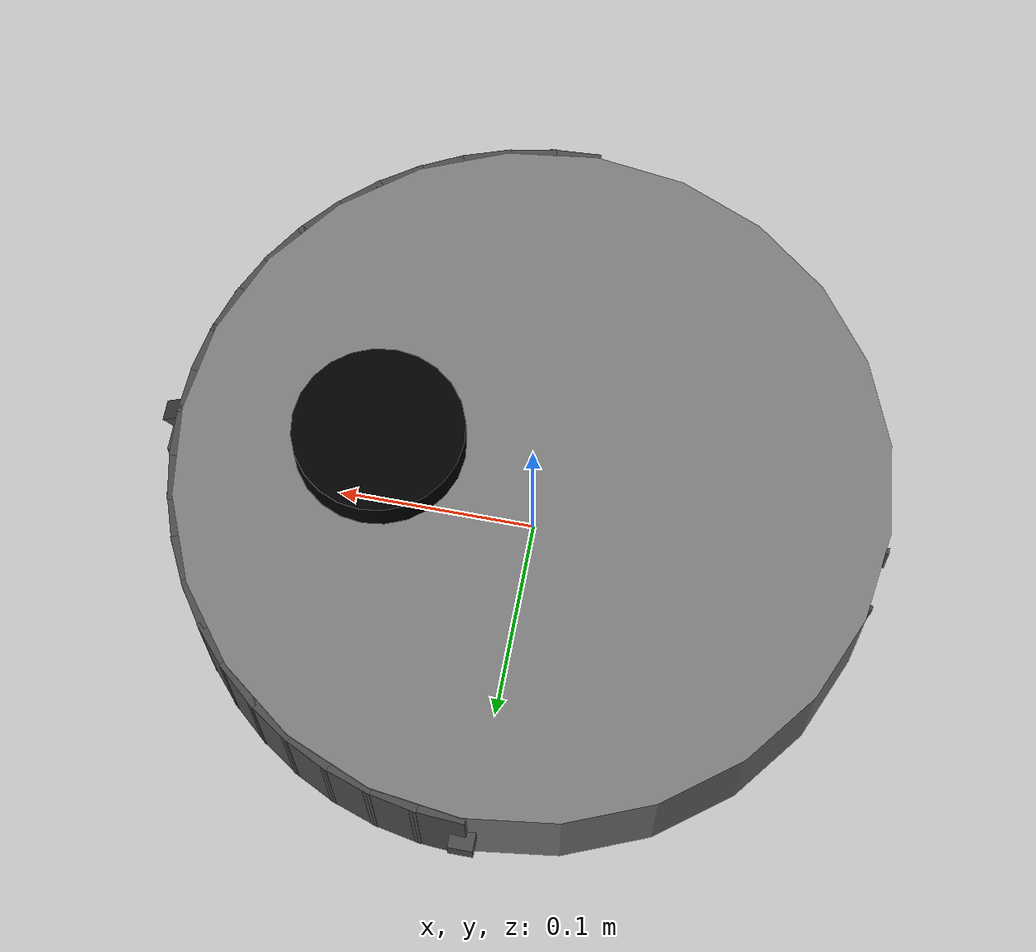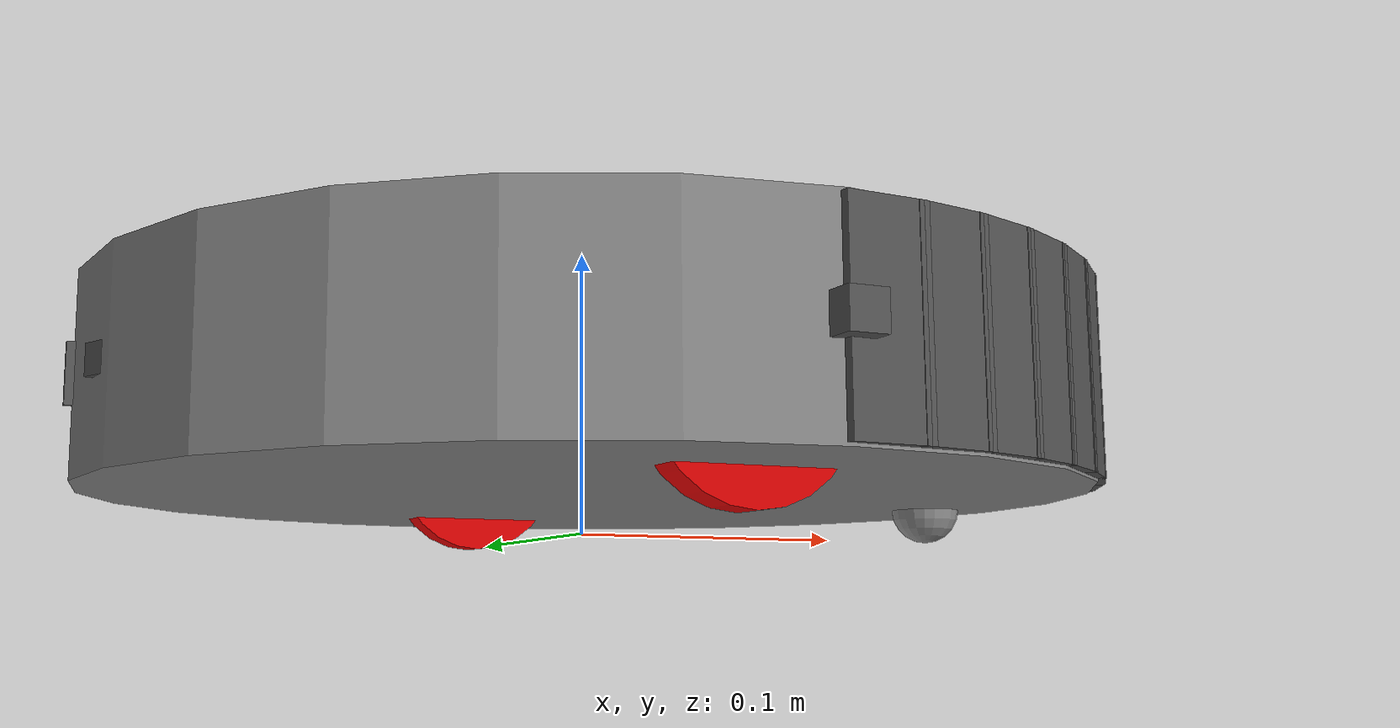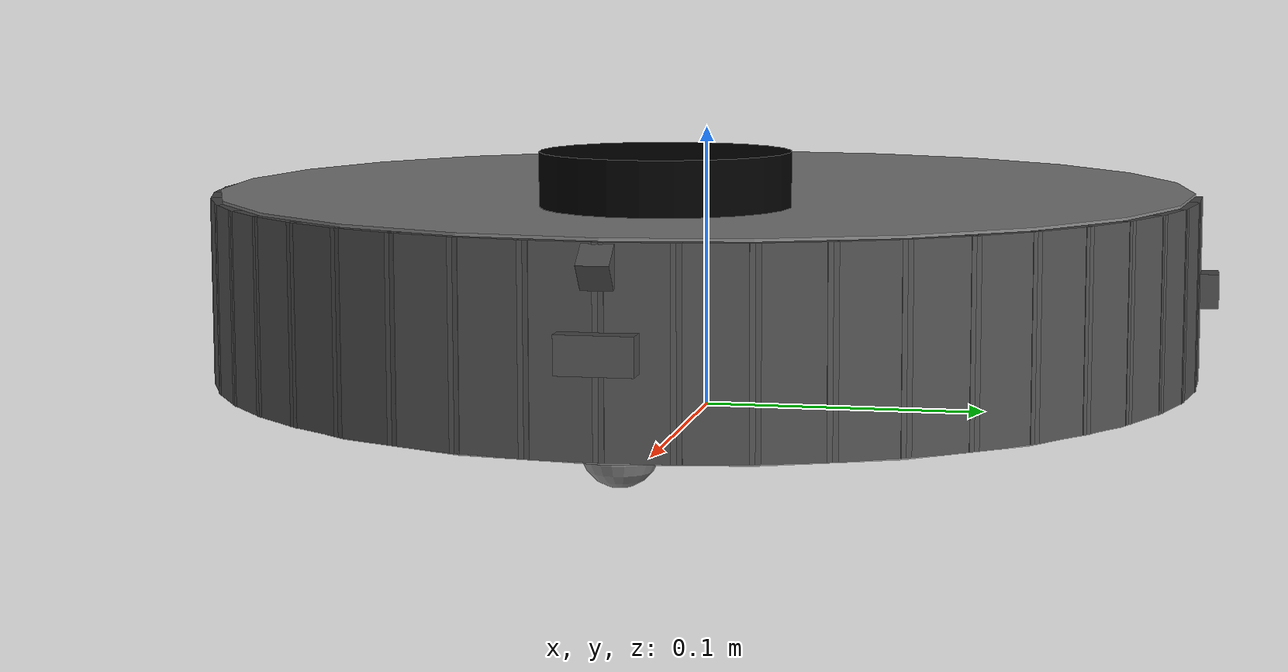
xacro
<?xml version="1.0" ?>
<robot name="oomwoo_one" xmlns:xacro="http://ros.org/wiki/xacro">
  <xacro:include filename="params.xacro" />
  <xacro:include filename="inertial.xacro" />
  <xacro:include filename="plugins.xacro" />
  <xacro:include filename="materials.xacro" />

  <xacro:property name="bumper_facet_width"
                  value="${2 * (base_diameter/2) * sin(0.5 * (90.0/bumper_facets_per_side) * DEG2RAD) * 1.15}"/>
  <xacro:property name="bumper_face_radius"
                  value="${sqrt((base_diameter/2)**2 - (bumper_facet_width/2)**2)}"/>
  <xacro:property name="bumper_center_radius" value="${bumper_face_radius - bumper_thickness/2}"/>
  <xacro:property name="body_collision_radius" value="${bumper_face_radius - bumper_lead}"/>
  <xacro:property name="bumper_visual_inset" value="0.001"/>

  <!-- One bumper facet: a thin box tangent to the body at angle 'ang' (deg from
       front), flush with the body radius. Named collision so the contact sensor
       can list it. -->
  <xacro:macro name="bumper_facet" params="prefix idx ang width">
    <visual>
      <origin xyz="${bumper_center_radius*cos(ang*DEG2RAD)} ${bumper_center_radius*sin(ang*DEG2RAD)} ${bumper_z}"
              rpy="0 0 ${(ang+90)*DEG2RAD}"/>
      <geometry>
        <box size="${width} ${bumper_thickness} ${bumper_height - 2*bumper_visual_inset}"/>
      </geometry>
      <material name="dark"/>
    </visual>
    <collision name="${prefix}_${idx}">
      <origin xyz="${bumper_center_radius*cos(ang*DEG2RAD)} ${bumper_center_radius*sin(ang*DEG2RAD)} ${bumper_z}"
              rpy="0 0 ${(ang+90)*DEG2RAD}"/>
      <geometry>
        <box size="${width} ${bumper_thickness} ${bumper_height}"/>
      </geometry>
    </collision>
  </xacro:macro>

  <!-- A 90-deg bumper half built from 'n' facets spanning a0 .. a0+90 deg.
       Facet width = arc chord * 1.15 so neighbours overlap (continuous, no gaps). -->
  <xacro:macro name="bumper_arc" params="prefix a0 n i:=0">
    <xacro:if value="${i &lt; n}">
      <xacro:bumper_facet prefix="${prefix}" idx="${i}"
        ang="${a0 + (i + 0.5) * (90.0 / n)}"
        width="${bumper_facet_width}"/>
      <xacro:bumper_arc prefix="${prefix}" a0="${a0}" n="${n}" i="${i + 1}"/>
    </xacro:if>
  </xacro:macro>

  <xacro:macro name="side_range_sensor" params="prefix side_sign">
    <joint name="${prefix}_joint" type="fixed">
      <parent link="base_link"/>
      <child link="${prefix}_link"/>
      <origin xyz="${range_sensor_x} ${side_sign * base_diameter/2} ${range_sensor_z}"
              rpy="0 0 ${side_sign * range_sensor_angle_deg * DEG2RAD}"/>
    </joint>
    <link name="${prefix}_link">
      <visual>
        <origin xyz="0 0 0" rpy="0 0 0"/>
        <geometry>
          <box size="${range_sensor_size} ${range_sensor_size} ${range_sensor_size}"/>
        </geometry>
        <material name="dark"/>
      </visual>
      <xacro:solid_box_inertia m="${range_sensor_mass}"
        x="${range_sensor_size}" y="${range_sensor_size}" z="${range_sensor_size}"/>
    </link>
  </xacro:macro>

  <xacro:macro name="ir_receiver" params="prefix side_sign">
    <joint name="${prefix}_joint" type="fixed">
      <parent link="base_link"/>
      <child link="${prefix}_link"/>
      <origin xyz="${-base_diameter/2 + ir_rx_size} ${side_sign * ir_rx_y} ${ir_rx_z}"
              rpy="0 0 ${(180.0 - side_sign * ir_rx_splay_deg) * DEG2RAD}"/>
    </joint>
    <link name="${prefix}_link">
      <visual>
        <origin xyz="0 0 0" rpy="0 0 0"/>
        <geometry>
          <box size="${ir_rx_size} ${ir_rx_size} ${ir_rx_size}"/>
        </geometry>
        <material name="dark"/>
      </visual>
      <xacro:solid_box_inertia m="${ir_rx_mass}"
        x="${ir_rx_size}" y="${ir_rx_size}" z="${ir_rx_size}"/>
    </link>
  </xacro:macro>

  <xacro:macro name="ir_baffle">
    <joint name="ir_baffle_joint" type="fixed">
      <parent link="base_link"/>
      <child link="ir_baffle_link"/>
      <origin xyz="${-base_diameter/2 + ir_baffle_len/2} 0 ${ir_rx_z}" rpy="0 0 0"/>
    </joint>
    <link name="ir_baffle_link">
      <visual>
        <origin xyz="0 0 0" rpy="0 0 0"/>
        <geometry>
          <box size="${ir_baffle_len} ${ir_baffle_thick} ${ir_rx_size * 2}"/>
        </geometry>
        <material name="dark"/>
      </visual>
      <xacro:solid_box_inertia m="${ir_rx_mass}"
        x="${ir_baffle_len}" y="${ir_baffle_thick}" z="${ir_rx_size * 2}"/>
    </link>
  </xacro:macro>

  <xacro:macro name="front_tof_sensor">
    <joint name="tof_front_joint" type="fixed">
      <parent link="base_link"/>
      <child link="tof_front_link"/>
      <origin xyz="${tof_front_x} 0 ${tof_front_z}" rpy="0 0 0"/>
    </joint>
    <link name="tof_front_link">
      <visual>
        <origin xyz="0 0 0" rpy="0 0 0"/>
        <geometry>
          <box size="${tof_front_size} ${2*tof_front_size} ${tof_front_size}"/>
        </geometry>
        <material name="dark"/>
      </visual>
      <xacro:solid_box_inertia m="${tof_front_mass}"
        x="${tof_front_size}" y="${2*tof_front_size}" z="${tof_front_size}"/>
    </link>
  </xacro:macro>

  <xacro:macro name="floor_camera">
    <joint name="camera_joint" type="fixed">
      <parent link="base_link"/>
      <child link="camera_link"/>
      <origin xyz="${camera_x} 0 ${camera_z}"
              rpy="0 ${radians(camera_pitch_deg)} 0"/>
    </joint>
    <link name="camera_link">
      <visual>
        <origin xyz="0 0 0" rpy="0 0 0"/>
        <geometry>
          <box size="${camera_size} ${camera_size} ${camera_size}"/>
        </geometry>
        <material name="dark"/>
      </visual>
      <xacro:solid_box_inertia m="${camera_mass}"
        x="${camera_size}" y="${camera_size}" z="${camera_size}"/>
    </link>
    <joint name="camera_optical_joint" type="fixed">
      <parent link="camera_link"/>
      <child link="camera_optical_frame"/>
      <origin xyz="0 0 0" rpy="${-pi/2} 0 ${-pi/2}"/>
    </joint>
    <link name="camera_optical_frame"/>
  </xacro:macro>

  <link name="base_footprint"/>

  <joint name="base_joint" type="fixed">
    <parent link="base_footprint"/>
    <child link="base_link"/>
    <origin xyz="0 0 ${floor_clearance}" rpy="0 0 0"/>
  </joint>

  <link name="base_link">
    <visual>
      <origin xyz="0 0 ${lower_cylinder_height/2}" rpy="0 0 0"/>
      <geometry>
        <cylinder length="${lower_cylinder_height}" radius="${body_collision_radius}"/>
      </geometry>
      <material name="grey"/>
    </visual>

    <!-- Collision is bumper_lead inside the bumper face, so the bumper touches
         first; the visual above stays at the full body radius. -->
    <collision>
      <origin xyz="0 0 ${lower_cylinder_height/2}" rpy="0 0 0"/>
      <geometry>
        <cylinder length="${lower_cylinder_height}" radius="${body_collision_radius}"/>
      </geometry>
    </collision>

    <!-- Continuous front bumper = front 180 deg of the cylinder wall (named
         collisions on base_link). Left half 0..+90 deg, right half -90..0 deg. -->
    <xacro:bumper_arc prefix="bumper_left" a0="0" n="${bumper_facets_per_side}"/>
    <xacro:bumper_arc prefix="bumper_right" a0="-90" n="${bumper_facets_per_side}"/>

    <xacro:solid_cylinder_inertia m="${lower_cylinder_mass}" r="${base_diameter/2}" h="${lower_cylinder_height}"/>
  </link>

  <joint name="caster_joint" type="fixed">
    <parent link="base_link"/>
    <child link="caster_link"/>
    <origin xyz="${base_diameter/2-caster_inset} 0 ${caster_diameter/2-floor_clearance}" rpy="0 0 0"/>
  </joint>

  <link name="caster_link">
    <visual>
      <origin xyz="0 0 0" rpy="0 0 0"/>
      <geometry>
        <sphere radius="${caster_diameter/2}"/>
      </geometry>
      <material name="grey"/>
    </visual>

   <collision>
      <origin xyz="0 0 0" rpy="0 0 0"/>
      <geometry>
        <sphere radius="${caster_diameter/2}"/>
      </geometry>
    </collision>

    <xacro:solid_sphere_inertia m="${caster_mass}" r="${caster_diameter/2}"/>
  </link>

  <joint name="wheel_left_joint" type="continuous">
    <parent link="base_link"/>
    <child link="wheel_left_link"/>
    <origin xyz="0 ${wheel_base/2} ${wheel_diameter/2-floor_clearance}" rpy="-${pi/2} 0 0"/>
    <axis xyz="0 0 1">
      <limit>
        <effort>${motor_stall_torque}</effort>
      </limit>
    </axis>
  </joint>

  <link name="wheel_left_link">
    <visual>
      <origin xyz="0 0 0" rpy="0 0 0"/>
      <geometry>
        <cylinder length="${wheel_width}" radius="${wheel_diameter/2}"/>
      </geometry>
      <material name="red"/>
    </visual>

    <collision>
      <origin xyz="0 0 0" rpy="0 0 0"/>
      <geometry>
        <cylinder length="${wheel_width}" radius="${wheel_diameter/2}"/>
      </geometry>
    </collision>

    <xacro:solid_cylinder_inertia m="${wheel_mass}" r="${wheel_diameter/2}" h="${wheel_width}"/>
  </link>

  <joint name="wheel_right_joint" type="continuous">
    <parent link="base_link"/>
    <child link="wheel_right_link"/>
    <origin xyz="0 ${-wheel_base/2} ${wheel_diameter/2-floor_clearance}" rpy="-${pi/2} 0 0"/>
    <axis xyz="0 0 1">
      <limit>
        <effort>${motor_stall_torque}</effort>
      </limit>
    </axis>
  </joint>

  <link name="wheel_right_link">
    <visual>
      <origin xyz="0 0 0" rpy="0 0 0"/>
      <geometry>
        <cylinder length="${wheel_width}" radius="${wheel_diameter/2}"/>
      </geometry>
      <material name="red"/>
    </visual>

    <collision>
      <origin xyz="0 0 0" rpy="0 0 0"/>
      <geometry>
        <cylinder length="${wheel_width}" radius="${wheel_diameter/2}"/>
      </geometry>
    </collision>

    <xacro:solid_cylinder_inertia m="${wheel_mass}" r="${wheel_diameter/2}" h="${wheel_width}"/>
  </link>

  <!-- Upright top-mounted LiDAR turret (+Z up, CCW scan) to match both the
       Gazebo gpu_lidar sensor and the physical robot's vacuum_ros2_bridge /scan. -->
  <joint name="scan_joint" type="fixed">
    <parent link="base_link"/>
    <child link="base_scan"/>
    <origin xyz="${lidar_center_offset} 0 ${lower_cylinder_height + laser_puck_offset}" rpy="0 0 0"/>
  </joint>

  <link name="base_scan">
    <visual>
      <origin xyz="0 0 0" rpy="0 0 0"/>
      <geometry>
        <cylinder length="${laser_puck_height}" radius="${laser_puck_diameter/2}"/>
      </geometry>
      <material name="black"/>
    </visual>

    <collision>
      <origin xyz="0 0 0" rpy="0 0 0"/>
      <geometry>
        <cylinder length="${laser_puck_height}" radius="${laser_puck_diameter/2}"/>
      </geometry>
    </collision>

    <xacro:solid_cylinder_inertia m="${laser_puck_mass}" r="${laser_puck_diameter/2}" h="${laser_puck_height}"/>
  </link>

  <!-- Left/right side distance sensors (short-range wall sensors) -->
  <xacro:ir_receiver prefix="ir_rx_left" side_sign="1"/>
  <xacro:ir_receiver prefix="ir_rx_right" side_sign="-1"/>
  <xacro:ir_baffle/>
  <xacro:side_range_sensor prefix="range_left" side_sign="1"/>
  <xacro:side_range_sensor prefix="range_right" side_sign="-1"/>

  <!-- Front multizone ToF depth sensor (front & center) -->
  <xacro:front_tof_sensor/>

  <!-- Front floor camera, top centre, tilted down -->
  <xacro:floor_camera/>

  <!-- IMU (gyro + accelerometer), near the body center -->
  <joint name="imu_joint" type="fixed">
    <parent link="base_link"/>
    <child link="imu_link"/>
    <origin xyz="${imu_x} ${imu_y} ${imu_z}" rpy="0 0 0"/>
  </joint>
  <link name="imu_link">
    <visual>
      <origin xyz="0 0 0" rpy="0 0 0"/>
      <geometry>
        <box size="${imu_size} ${imu_size} ${imu_size}"/>
      </geometry>
      <material name="orange"/>
    </visual>
    <xacro:solid_box_inertia m="${imu_mass}"
      x="${imu_size}" y="${imu_size}" z="${imu_size}"/>
  </link>

</robot>

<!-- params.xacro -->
<robot xmlns:xacro="http://ros.org/wiki/xacro">
  <!-- ****************** ROBOT DIMENSIONS ****************** -->
  <!-- Units: meters, degrees, kg, N*m, m/s2 -->
  <!-- oomwoo-one (forked from Proscenic M6 Pro): round body 349mm dia, ~95mm tall (incl. LiDAR turret).
       Geometry inherited — refine from the sourced parts + 3D design. -->
  <!-- wheel_base = measured wheel track 235mm. The bridge uses its own odometry
       constant WHEEL_BASE = 0.233m (2mm less); negligible, calibrate empirically. -->
  <xacro:property name="wheel_diameter" value="0.068"/>
  <xacro:property name="wheel_width" value="0.012"/>
  <xacro:property name="caster_diameter" value="0.025"/>
  <xacro:property name="caster_inset" value="0.030"/>
  <xacro:property name="floor_clearance" value="0.0125"/>
  <xacro:property name="base_diameter" value="0.349"/>
  <xacro:property name="wheel_base" value="0.235"/>
  <!-- Body cylinder: top is 79mm above the floor, minus 12.5mm floor gap = 66.5mm tall.
       LiDAR housing sits on top (body top 79mm + 18mm housing = ~97mm total height). -->
  <xacro:property name="lower_cylinder_height" value="0.0665"/>
  <!-- LiDAR housing, measured 18mm, seated flush on the body top -->
  <xacro:property name="laser_puck_height" value="0.018"/>
  <xacro:property name="laser_puck_diameter" value="0.083"/>
  <!-- offset = laser_puck_height/2 so the housing bottom sits at the body top -->
  <xacro:property name="laser_puck_offset" value="0.009"/>
  <xacro:property name="lidar_min_range" value="0.1"/>
  <xacro:property name="lidar_center_offset" value="${base_diameter/2 - lidar_min_range}"/>

  <xacro:property name="motor_stall_torque" value="0.5"/>
  <xacro:property name="max_linear_acceleration" value="1"/>
  <xacro:property name="lower_cylinder_mass" value="2.500"/>
  <!-- caster and battery weight -->
  <xacro:property name="caster_mass" value="0.050"/>
  <xacro:property name="wheel_mass" value="0.100"/>
  <xacro:property name="laser_puck_mass" value="0.150"/>

  <xacro:property name="bumper_facets_per_side" value="12"/>
  <xacro:property name="bumper_thickness" value="0.010"/> <!-- radial -->
  <xacro:property name="bumper_lead" value="0.002"/> <!-- bumper face ahead of the body collision -->
  <xacro:property name="bumper_height" value="${lower_cylinder_height}"/>
  <xacro:property name="bumper_z" value="${lower_cylinder_height/2}"/>  <!-- = body cylinder center, base_link frame -->

  <!-- ****************** SIDE DISTANCE SENSORS ****************** -->
  <xacro:property name="ir_rx_splay_deg" value="25.0"/>
  <xacro:property name="ir_rx_fov_deg" value="50.0"/>      <!-- half-angle each -->
  <xacro:property name="ir_rx_y" value="0.030"/>           <!-- lateral offset -->
  <xacro:property name="ir_rx_z" value="${lower_cylinder_height/2}"/>
  <xacro:property name="ir_rx_size" value="0.010"/>
  <xacro:property name="ir_rx_mass" value="0.004"/>
  <xacro:property name="ir_baffle_len" value="0.030"/>     <!-- fin, inward from the shell -->
  <xacro:property name="ir_baffle_thick" value="0.003"/>

  <xacro:property name="range_sensor_min" value="0.02"/>          <!-- m: closest reading -->
  <xacro:property name="range_sensor_max" value="0.50"/>          <!-- m: beyond this reads as no wall -->
  <xacro:property name="range_sensor_resolution" value="0.005"/>
  <xacro:property name="range_sensor_angle_deg" value="90.0"/>    <!-- deg from forward; 90 = straight out to the side -->
  <xacro:property name="range_sensor_x" value="0.0"/>             <!-- fore/aft mount offset along the side -->
  <xacro:property name="range_sensor_z" value="${lower_cylinder_height/2}"/> <!-- body mid-height, base_link frame -->
  <xacro:property name="range_sensor_update_rate" value="20"/>    <!-- Hz -->
  <xacro:property name="range_sensor_size" value="0.012"/>        <!-- visual cube edge (m) -->
  <xacro:property name="range_sensor_mass" value="0.005"/>        <!-- kg, negligible -->
  <xacro:property name="range_sensor_samples" value="3"/>         <!-- rays across the FOV (2 or more) -->
  <xacro:property name="range_sensor_fov_deg" value="1.0"/>       <!-- total beam FOV (deg) -->

  <!-- ****************** FRONT DISTANCE SENSOR (multizone ToF) ****************** -->
  <xacro:property name="tof_front_h_samples" value="16"/>          <!-- 8 + 8 zones across -->
  <xacro:property name="tof_front_v_samples" value="8"/>           <!-- 8 zones tall -->
  <xacro:property name="tof_front_hfov_deg" value="120.0"/>        <!-- 2 x 60 deg -->
  <xacro:property name="tof_front_vfov_deg" value="60.0"/>         <!-- one sensor's vertical FoV -->
  <xacro:property name="tof_front_min" value="0.02"/>
  <xacro:property name="tof_front_max" value="4.0"/>               <!-- m: VL53L7CX long range -->
  <xacro:property name="tof_front_resolution" value="0.005"/>
  <xacro:property name="tof_front_update_rate" value="15"/>        <!-- Hz -->
  <xacro:property name="tof_front_x" value="${base_diameter/2}"/>  <!-- front surface -->
  <xacro:property name="tof_front_z" value="${lower_cylinder_height/2}"/> <!-- mid-height -->
  <xacro:property name="tof_front_size" value="0.012"/>            <!-- visual cube edge (m) -->
  <xacro:property name="tof_front_mass" value="0.005"/>            <!-- kg, negligible -->

  <!-- ****************** FRONT FLOOR CAMERA (RGB) ****************** -->
  <xacro:property name="camera_width" value="640"/>                <!-- VGA -->
  <xacro:property name="camera_height" value="480"/>
  <xacro:property name="camera_hfov_deg" value="120.0"/>
  <xacro:property name="camera_vfov_deg"
    value="${2 * degrees(atan(tan(radians(camera_hfov_deg) / 2) * camera_height / camera_width))}"/>
  <xacro:property name="camera_pitch_deg" value="${90.0 - camera_vfov_deg / 2}"/> <!-- down; bottom edge vertical -->
  <xacro:property name="camera_near" value="0.02"/>
  <xacro:property name="camera_far" value="10.0"/>
  <xacro:property name="camera_update_rate" value="15"/>           <!-- Hz -->
  <xacro:property name="camera_x" value="${base_diameter/2}"/>     <!-- front surface (window) -->
  <!-- lens centre 8 mm under the body top: ~71 mm above the floor -->
  <xacro:property name="camera_z" value="${lower_cylinder_height - 0.008}"/>
  <xacro:property name="camera_size" value="0.010"/>               <!-- visual cube edge (m) -->
  <xacro:property name="camera_mass" value="0.005"/>               <!-- kg, negligible -->

  <!-- ****************** IMU ****************** -->
  <xacro:property name="imu_x" value="0.0"/>
  <xacro:property name="imu_y" value="0.0"/>
  <xacro:property name="imu_z" value="${lower_cylinder_height/2}"/> <!-- body mid-height -->
  <xacro:property name="imu_update_rate" value="100"/>             <!-- Hz -->
  <xacro:property name="imu_gyro_noise" value="0.0002"/>           <!-- rad/s stddev (MEMS-ish) -->
  <xacro:property name="imu_accel_noise" value="0.017"/>           <!-- m/s^2 stddev -->
  <xacro:property name="imu_size" value="0.010"/>                  <!-- visual cube edge (m) -->
  <xacro:property name="imu_mass" value="0.005"/>                  <!-- kg, negligible -->

  <xacro:property name="DEG2RAD" value="0.0174533"/>
</robot>

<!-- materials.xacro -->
<robot xmlns:xacro="http://ros.org/wiki/xacro">

  <material name="black">
      <color rgba="0.0 0.0 0.0 1.0"/>
  </material>

  <material name="dark">
    <color rgba="0.3 0.3 0.3 1.0"/>
  </material>

  <material name="light_black">
    <color rgba="0.4 0.4 0.4 1.0"/>
  </material>

  <material name="blue">
    <color rgba="0.0 0.0 0.8 1.0"/>
  </material>

  <material name="green">
    <color rgba="0.0 0.8 0.0 1.0"/>
  </material>

  <material name="grey">
    <color rgba="0.5 0.5 0.5 1.0"/>
  </material>

  <material name="orange">
    <color rgba="1.0 0.4235 0.0392 1.0"/>
  </material>

  <material name="brown">
    <color rgba="0.8706 0.8118 0.7647 1.0"/>
  </material>

  <material name="red">
    <color rgba="0.8 0.0 0.0 1.0"/>
  </material>

  <material name="white">
    <color rgba="1.0 1.0 1.0 1.0"/>
  </material>

  <gazebo reference="wheel_left_link">
    <mu1>0.2</mu1>
    <mu2>0.2</mu2>
  </gazebo>

  <gazebo reference="wheel_right_link">
    <mu1>0.2</mu1>
    <mu2>0.2</mu2>
  </gazebo>

  <gazebo reference="caster_link">
    <mu1>0.2</mu1>
    <mu2>0.2</mu2>
  </gazebo>

</robot>
